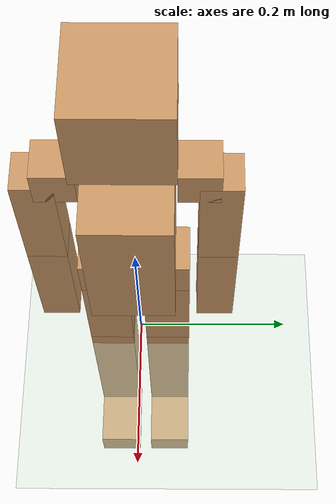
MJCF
<mujoco model="kxr_l2_humanoid">
  <compiler angle="degree" inertiafromgeom="true"/>
  <option integrator="RK4" timestep="0.002"/>
  <default>
    <joint armature="1" damping="1" limited="true"/>
    <geom conaffinity="0" condim="3" density="1000" friction="0.8 0.1 0.1" margin="0.001" rgba="0.8 0.6 0.4 1"/>
  </default>

  <worldbody>
    <light cutoff="100" diffuse="1 1 1" dir="-0 0 -1.3" directional="true" exponent="1" pos="0 0 1.3" specular=".1 .1 .1"/>
    <geom conaffinity="1" condim="3" name="floor" pos="0 0 0" rgba="0.8 0.9 0.8 1" size="40 40 40" type="plane"/>

    <body name="torso" pos="0 0 0.2955">
      <joint armature="0" damping="0" limited="false" name="root" pos="0 0 0" type="free"/>
      <geom name="torso1" pos="0 0 0" size="0.0765 0.05 0.0988" type="box"/>

      <body name="head" pos="0 0 0.1585">
        <joint name="head_pan" axis="0 0 1" range="-90 90" type="hinge"/>
        <joint name="head_tilt" axis="0 1 0" range="-45 45" type="hinge"/>
        <geom name="head" pos="0 0 0.05375" size="0.05375 0.05375 0.05375" type="box"/>
      </body>

      <body name="right_shoulder" pos="0 -0.0765 0.0988">
        <joint name="right_shoulder_pitch" axis="0 1 0" range="-180 180" type="hinge"/>
        <geom name="right_shoulder" size="0.0235 0.0235 0.0235" type="box"/>
        <body name="right_upper_arm" pos="0 -0.0235 0">
          <joint name="right_shoulder_roll" axis="1 0 0" range="-90 90" type="hinge"/>
          <geom name="right_upper_arm" pos="0 0 -0.0735" size="0.0235 0.0235 0.0735" type="box"/>
          <body name="right_lower_arm" pos="0 0 -0.147">
            <joint name="right_elbow" axis="0 1 0" range="-130 10" type="hinge"/>
            <geom name="right_lower_arm" pos="0 0 -0.0793" size="0.0235 0.0235 0.0793" type="box"/>
          </body>
        </body>
      </body>

      <body name="left_shoulder" pos="0 0.0765 0.0988">
        <joint name="left_shoulder_pitch" axis="0 1 0" range="-180 180" type="hinge"/>
        <geom name="left_shoulder" size="0.0235 0.0235 0.0235" type="box"/>
        <body name="left_upper_arm" pos="0 0.0235 0">
          <joint name="left_shoulder_roll" axis="1 0 0" range="-90 90" type="hinge"/>
          <geom name="left_upper_arm" pos="0 0 -0.0735" size="0.0235 0.0235 0.0735" type="box"/>
          <body name="left_lower_arm" pos="0 0 -0.147">
            <joint name="left_elbow" axis="0 1 0" range="-130 10" type="hinge"/>
            <geom name="left_lower_arm" pos="0 0 -0.0793" size="0.0235 0.0235 0.0793" type="box"/>
          </body>
        </body>
      </body>

      <body name="right_hip" pos="0 -0.038 -0.0988">
        <joint name="right_hip_yaw" axis="0 0 1" range="-90 90" type="hinge"/>
        <geom name="right_hip" size="0.029 0.029 0.029" type="box"/>
        <body name="right_upper_leg" pos="0 0 -0.029">
          <joint name="right_hip_roll" axis="1 0 0" range="-90 90" type="hinge"/>
          <joint name="right_hip_pitch" axis="0 1 0" range="-180 180" type="hinge"/>
          <geom name="right_upper_leg" pos="0 0 -0.0735" size="0.029 0.029 0.0735" type="box"/>
          <body name="right_lower_leg" pos="0 0 -0.147">
            <joint name="right_knee" axis="0 1 0" range="-130 10" type="hinge"/>
            <geom name="right_lower_leg" pos="0 0 -0.1213" size="0.029 0.029 0.1213" type="box"/>
            <body name="right_foot" pos="0 0 -0.2425">
              <joint name="right_ankle" axis="0 1 0" range="-45 45" type="hinge"/>
              <geom name="right_foot" pos="0.05 0 -0.0235" size="0.05 0.029 0.0235" type="box"/>
            </body>
          </body>
        </body>
      </body>

      <body name="left_hip" pos="0 0.038 -0.0988">
        <joint name="left_hip_yaw" axis="0 0 1" range="-90 90" type="hinge"/>
        <geom name="left_hip" size="0.029 0.029 0.029" type="box"/>
        <body name="left_upper_leg" pos="0 0 -0.029">
          <joint name="left_hip_roll" axis="1 0 0" range="-90 90" type="hinge"/>
          <joint name="left_hip_pitch" axis="0 1 0" range="-180 180" type="hinge"/>
          <geom name="left_upper_leg" pos="0 0 -0.0735" size="0.029 0.029 0.0735" type="box"/>
          <body name="left_lower_leg" pos="0 0 -0.147">
            <joint name="left_knee" axis="0 1 0" range="-130 10" type="hinge"/>
            <geom name="left_lower_leg" pos="0 0 -0.1213" size="0.029 0.029 0.1213" type="box"/>
            <body name="left_foot" pos="0 0 -0.2425">
              <joint name="left_ankle" axis="0 1 0" range="-45 45" type="hinge"/>
              <geom name="left_foot" pos="0.05 0 -0.0235" size="0.05 0.029 0.0235" type="box"/>
            </body>
          </body>
        </body>
      </body>
    </body>
  </worldbody>

  <actuator>
    <motor joint="head_pan" ctrlrange="-1 1" ctrllimited="true"/>
    <motor joint="head_tilt" ctrlrange="-1 1" ctrllimited="true"/>
    <motor joint="right_shoulder_pitch" ctrlrange="-1 1" ctrllimited="true"/>
    <motor joint="right_shoulder_roll" ctrlrange="-1 1" ctrllimited="true"/>
    <motor joint="right_elbow" ctrlrange="-1 1" ctrllimited="true"/>
    <motor joint="left_shoulder_pitch" ctrlrange="-1 1" ctrllimited="true"/>
    <motor joint="left_shoulder_roll" ctrlrange="-1 1" ctrllimited="true"/>
    <motor joint="left_elbow" ctrlrange="-1 1" ctrllimited="true"/>
    <motor joint="right_hip_yaw" ctrlrange="-1 1" ctrllimited="true"/>
    <motor joint="right_hip_roll" ctrlrange="-1 1" ctrllimited="true"/>
    <motor joint="right_hip_pitch" ctrlrange="-1 1" ctrllimited="true"/>
    <motor joint="right_knee" ctrlrange="-1 1" ctrllimited="true"/>
    <motor joint="right_ankle" ctrlrange="-1 1" ctrllimited="true"/>
    <motor joint="left_hip_yaw" ctrlrange="-1 1" ctrllimited="true"/>
    <motor joint="left_hip_roll" ctrlrange="-1 1" ctrllimited="true"/>
    <motor joint="left_hip_pitch" ctrlrange="-1 1" ctrllimited="true"/>
    <motor joint="left_knee" ctrlrange="-1 1" ctrllimited="true"/>
    <motor joint="left_ankle" ctrlrange="-1 1" ctrllimited="true"/>
  </actuator>
</mujoco>
